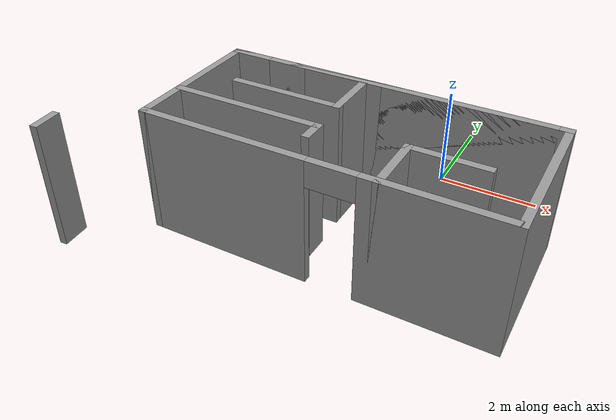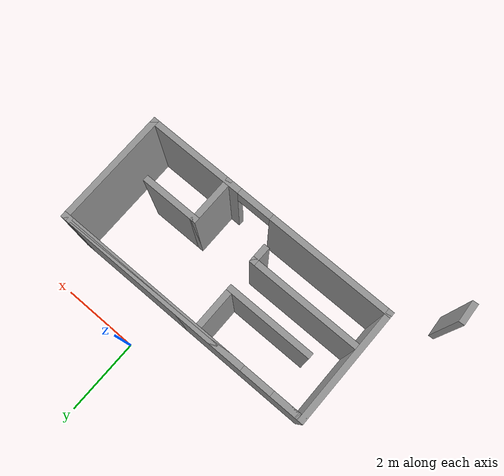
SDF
<?xml version='1.0'?>
<sdf version='1.7'>
  <model name='room'>
    <pose>-1.4927 -2.7202 0 0 -0 0</pose>
    <link name='Wall_11'>
      <collision name='Wall_11_Collision'>
        <geometry>
          <box>
            <size>0.551123 0.15 2.5</size>
          </box>
        </geometry>
        <pose>0 0 1.25 0 -0 0</pose>
      </collision>
      <visual name='Wall_11_Visual'>
        <pose>0 0 1.25 0 -0 0</pose>
        <geometry>
          <box>
            <size>0.551123 0.15 2.5</size>
          </box>
        </geometry>
        <material>
          <script>
            <uri>file://media/materials/scripts/gazebo.material</uri>
            <name>Gazebo/Grey</name>
          </script>
          <ambient>1 1 1 1</ambient>
        </material>
        <meta>
          <layer>0</layer>
        </meta>
      </visual>
      <pose>-3.9123 -2.4398 0 0 -0 1.64566</pose>
    </link>
    <link name='Wall_15'>
      <collision name='Wall_15_Collision'>
        <geometry>
          <box>
            <size>5.25 0.15 2.5</size>
          </box>
        </geometry>
        <pose>0 0 1.25 0 -0 0</pose>
      </collision>
      <visual name='Wall_15_Visual'>
        <pose>0 0 1.25 0 -0 0</pose>
        <geometry>
          <box>
            <size>5.25 0.15 2.5</size>
          </box>
        </geometry>
        <material>
          <script>
            <uri>file://media/materials/scripts/gazebo.material</uri>
            <name>Gazebo/Grey</name>
          </script>
          <ambient>1 1 1 1</ambient>
        </material>
        <meta>
          <layer>0</layer>
        </meta>
      </visual>
      <pose>1.1327 1.4902 0 0 -0 0</pose>
    </link>
    <link name='Wall_16'>
      <collision name='Wall_16_Collision'>
        <geometry>
          <box>
            <size>6.5 0.15 2.5</size>
          </box>
        </geometry>
        <pose>0 0 1.25 0 -0 0</pose>
      </collision>
      <visual name='Wall_16_Visual'>
        <pose>0 0 1.25 0 -0 0</pose>
        <geometry>
          <box>
            <size>6.5 0.15 2.5</size>
          </box>
        </geometry>
        <material>
          <script>
            <uri>file://media/materials/scripts/gazebo.material</uri>
            <name>Gazebo/Grey</name>
          </script>
          <ambient>1 1 1 1</ambient>
        </material>
        <meta>
          <layer>0</layer>
        </meta>
      </visual>
      <pose>0.5077 1.4902 0 0 -0 3.14159</pose>
    </link>
    <link name='Wall_17'>
      <collision name='Wall_17_Collision'>
        <geometry>
          <box>
            <size>3 0.15 2.5</size>
          </box>
        </geometry>
        <pose>0 0 1.25 0 -0 0</pose>
      </collision>
      <visual name='Wall_17_Visual'>
        <pose>0 0 1.25 0 -0 0</pose>
        <geometry>
          <box>
            <size>3 0.15 2.5</size>
          </box>
        </geometry>
        <material>
          <script>
            <uri>file://media/materials/scripts/gazebo.material</uri>
            <name>Gazebo/Grey</name>
          </script>
          <ambient>1 1 1 1</ambient>
        </material>
        <meta>
          <layer>0</layer>
        </meta>
      </visual>
      <pose>-2.6673 0.0652 0 0 -0 -1.5708</pose>
    </link>
    <link name='Wall_18'>
      <pose>0.6327 -1.3598 0 0 -0 0</pose>
      <visual name='Wall_18_Visual_0'>
        <pose>-1.7275 0 1.25 0 -0 0</pose>
        <geometry>
          <box>
            <size>3.295 0.15 2.5</size>
          </box>
        </geometry>
        <material>
          <script>
            <uri>file://media/materials/scripts/gazebo.material</uri>
            <name>Gazebo/Grey</name>
          </script>
          <ambient>1 1 1 1</ambient>
        </material>
        <meta>
          <layer>0</layer>
        </meta>
      </visual>
      <collision name='Wall_18_Collision_0'>
        <geometry>
          <box>
            <size>3.295 0.15 2.5</size>
          </box>
        </geometry>
        <pose>-1.7275 0 1.25 0 -0 0</pose>
      </collision>
      <visual name='Wall_18_Visual_1'>
        <pose>2.0975 0 1.25 0 -0 0</pose>
        <geometry>
          <box>
            <size>2.555 0.15 2.5</size>
          </box>
        </geometry>
        <material>
          <script>
            <uri>file://media/materials/scripts/gazebo.material</uri>
            <name>Gazebo/Grey</name>
          </script>
          <ambient>1 1 1 1</ambient>
        </material>
        <meta>
          <layer>0</layer>
        </meta>
      </visual>
      <collision name='Wall_18_Collision_1'>
        <geometry>
          <box>
            <size>2.555 0.15 2.5</size>
          </box>
        </geometry>
        <pose>2.0975 0 1.25 0 -0 0</pose>
      </collision>
      <visual name='Wall_18_Visual_2'>
        <pose>0.37 0 2.25 0 -0 0</pose>
        <geometry>
          <box>
            <size>0.9 0.15 0.5</size>
          </box>
        </geometry>
        <material>
          <script>
            <uri>file://media/materials/scripts/gazebo.material</uri>
            <name>Gazebo/Grey</name>
          </script>
          <ambient>1 1 1 1</ambient>
        </material>
        <meta>
          <layer>0</layer>
        </meta>
      </visual>
      <collision name='Wall_18_Collision_2'>
        <geometry>
          <box>
            <size>0.9 0.15 0.5</size>
          </box>
        </geometry>
        <pose>0.37 0 2.25 0 -0 0</pose>
      </collision>
    </link>
    <link name='Wall_19'>
      <collision name='Wall_19_Collision'>
        <geometry>
          <box>
            <size>3 0.15 2.5</size>
          </box>
        </geometry>
        <pose>0 0 1.25 0 -0 0</pose>
      </collision>
      <visual name='Wall_19_Visual'>
        <pose>0 0 1.25 0 -0 0</pose>
        <geometry>
          <box>
            <size>3 0.15 2.5</size>
          </box>
        </geometry>
        <material>
          <script>
            <uri>file://media/materials/scripts/gazebo.material</uri>
            <name>Gazebo/Grey</name>
          </script>
          <ambient>1 1 1 1</ambient>
        </material>
        <meta>
          <layer>0</layer>
        </meta>
      </visual>
      <pose>3.9327 0.0652 0 0 -0 1.5708</pose>
    </link>
    <link name='Wall_20'>
      <collision name='Wall_20_Collision'>
        <geometry>
          <box>
            <size>6.75 0.15 2.5</size>
          </box>
        </geometry>
        <pose>0 0 1.25 0 -0 0</pose>
      </collision>
      <visual name='Wall_20_Visual'>
        <pose>0 0 1.25 0 -0 0</pose>
        <geometry>
          <box>
            <size>6.75 0.15 2.5</size>
          </box>
        </geometry>
        <material>
          <script>
            <uri>file://media/materials/scripts/gazebo.material</uri>
            <name>Gazebo/Grey</name>
          </script>
          <ambient>1 1 1 1</ambient>
        </material>
        <meta>
          <layer>0</layer>
        </meta>
      </visual>
      <pose>0.6327 1.4902 0 0 -0 3.14159</pose>
    </link>
    <link name='Wall_21'>
      <pose>-1.2423 1.4902 0 0 -0 0</pose>
      <visual name='Wall_21_Visual_0'>
        <pose>-1.0625 0 1.25 0 -0 0</pose>
        <geometry>
          <box>
            <size>0.875 0.15 2.5</size>
          </box>
        </geometry>
        <material>
          <script>
            <uri>file://media/materials/scripts/gazebo.material</uri>
            <name>Gazebo/Grey</name>
          </script>
          <ambient>1 1 1 1</ambient>
        </material>
        <meta>
          <layer>0</layer>
        </meta>
      </visual>
      <collision name='Wall_21_Collision_0'>
        <geometry>
          <box>
            <size>0.875 0.15 2.5</size>
          </box>
        </geometry>
        <pose>-1.0625 0 1.25 0 -0 0</pose>
      </collision>
      <visual name='Wall_21_Visual_1'>
        <pose>0.4375 0 0.25 0 -0 0</pose>
        <geometry>
          <box>
            <size>2.125 0.15 0.5</size>
          </box>
        </geometry>
        <material>
          <script>
            <uri>file://media/materials/scripts/gazebo.material</uri>
            <name>Gazebo/Grey</name>
          </script>
          <ambient>1 1 1 1</ambient>
        </material>
        <meta>
          <layer>0</layer>
        </meta>
      </visual>
      <collision name='Wall_21_Collision_1'>
        <geometry>
          <box>
            <size>2.125 0.15 0.5</size>
          </box>
        </geometry>
        <pose>0.4375 0 0.25 0 -0 0</pose>
      </collision>
      <visual name='Wall_21_Visual_2'>
        <pose>0.8375 0 1.5 0 -0 0</pose>
        <geometry>
          <box>
            <size>1.325 0.15 2</size>
          </box>
        </geometry>
        <material>
          <script>
            <uri>file://media/materials/scripts/gazebo.material</uri>
            <name>Gazebo/Grey</name>
          </script>
          <ambient>1 1 1 1</ambient>
        </material>
        <meta>
          <layer>0</layer>
        </meta>
      </visual>
      <collision name='Wall_21_Collision_2'>
        <geometry>
          <box>
            <size>1.325 0.15 2</size>
          </box>
        </geometry>
        <pose>0.8375 0 1.5 0 -0 0</pose>
      </collision>
      <visual name='Wall_21_Visual_3'>
        <pose>-0.225 0 1.9 0 -0 0</pose>
        <geometry>
          <box>
            <size>0.8 0.15 1.2</size>
          </box>
        </geometry>
        <material>
          <script>
            <uri>file://media/materials/scripts/gazebo.material</uri>
            <name>Gazebo/Grey</name>
          </script>
          <ambient>1 1 1 1</ambient>
        </material>
        <meta>
          <layer>0</layer>
        </meta>
      </visual>
      <collision name='Wall_21_Collision_3'>
        <geometry>
          <box>
            <size>0.8 0.15 1.2</size>
          </box>
        </geometry>
        <pose>-0.225 0 1.9 0 -0 0</pose>
      </collision>
    </link>
    <link name='Wall_22'>
      <collision name='Wall_22_Collision'>
        <geometry>
          <box>
            <size>1.25 0.15 2.5</size>
          </box>
        </geometry>
        <pose>0 0 1.25 0 -0 0</pose>
      </collision>
      <visual name='Wall_22_Visual'>
        <pose>0 0 1.25 0 -0 0</pose>
        <geometry>
          <box>
            <size>1.25 0.15 2.5</size>
          </box>
        </geometry>
        <material>
          <script>
            <uri>file://media/materials/scripts/gazebo.material</uri>
            <name>Gazebo/Grey</name>
          </script>
          <ambient>1 1 1 1</ambient>
        </material>
        <meta>
          <layer>0</layer>
        </meta>
      </visual>
      <pose>0.1827 0.9402 0 0 -0 -1.5708</pose>
    </link>
    <link name='Wall_23'>
      <collision name='Wall_23_Collision'>
        <geometry>
          <box>
            <size>2.25 0.15 2.5</size>
          </box>
        </geometry>
        <pose>0 0 1.25 0 -0 0</pose>
      </collision>
      <visual name='Wall_23_Visual'>
        <pose>0 0 1.25 0 -0 0</pose>
        <geometry>
          <box>
            <size>2.25 0.15 2.5</size>
          </box>
        </geometry>
        <material>
          <script>
            <uri>file://media/materials/scripts/gazebo.material</uri>
            <name>Gazebo/Grey</name>
          </script>
          <ambient>1 1 1 1</ambient>
        </material>
        <meta>
          <layer>0</layer>
        </meta>
      </visual>
      <pose>-0.8673 0.3902 0 0 -0 3.14159</pose>
    </link>
    <link name='Wall_25'>
      <collision name='Wall_25_Collision'>
        <geometry>
          <box>
            <size>3 0.15 2.5</size>
          </box>
        </geometry>
        <pose>0 0 1.25 0 -0 0</pose>
      </collision>
      <visual name='Wall_25_Visual'>
        <pose>0 0 1.25 0 -0 0</pose>
        <geometry>
          <box>
            <size>3 0.15 2.5</size>
          </box>
        </geometry>
        <material>
          <script>
            <uri>file://media/materials/scripts/gazebo.material</uri>
            <name>Gazebo/Grey</name>
          </script>
          <ambient>1 1 1 1</ambient>
        </material>
        <meta>
          <layer>0</layer>
        </meta>
      </visual>
      <pose>-1.2123 -0.3798 0 0 -0 0</pose>
    </link>
    <link name='Wall_26'>
      <collision name='Wall_26_Collision'>
        <geometry>
          <box>
            <size>0.5 0.15 2.5</size>
          </box>
        </geometry>
        <pose>0 0 1.25 0 -0 0</pose>
      </collision>
      <visual name='Wall_26_Visual'>
        <pose>0 0 1.25 0 -0 0</pose>
        <geometry>
          <box>
            <size>0.5 0.15 2.5</size>
          </box>
        </geometry>
        <material>
          <script>
            <uri>file://media/materials/scripts/gazebo.material</uri>
            <name>Gazebo/Grey</name>
          </script>
          <ambient>1 1 1 1</ambient>
        </material>
        <meta>
          <layer>0</layer>
        </meta>
      </visual>
      <pose>0.2127 -0.554801 0 0 -0 -1.5708</pose>
    </link>
    <link name='Wall_28'>
      <collision name='Wall_28_Collision'>
        <geometry>
          <box>
            <size>1.25 0.15 2.5</size>
          </box>
        </geometry>
        <pose>0 0 1.25 0 -0 0</pose>
      </collision>
      <visual name='Wall_28_Visual'>
        <pose>0 0 1.25 0 -0 0</pose>
        <geometry>
          <box>
            <size>1.25 0.15 2.5</size>
          </box>
        </geometry>
        <material>
          <script>
            <uri>file://media/materials/scripts/gazebo.material</uri>
            <name>Gazebo/Grey</name>
          </script>
          <ambient>1 1 1 1</ambient>
        </material>
        <meta>
          <layer>0</layer>
        </meta>
      </visual>
      <pose>1.7827 -0.8098 0 0 -0 1.5708</pose>
    </link>
    <link name='Wall_29'>
      <collision name='Wall_29_Collision'>
        <geometry>
          <box>
            <size>1.5 0.15 2.5</size>
          </box>
        </geometry>
        <pose>0 0 1.25 0 -0 0</pose>
      </collision>
      <visual name='Wall_29_Visual'>
        <pose>0 0 1.25 0 -0 0</pose>
        <geometry>
          <box>
            <size>1.5 0.15 2.5</size>
          </box>
        </geometry>
        <material>
          <script>
            <uri>file://media/materials/scripts/gazebo.material</uri>
            <name>Gazebo/Grey</name>
          </script>
          <ambient>1 1 1 1</ambient>
        </material>
        <meta>
          <layer>0</layer>
        </meta>
      </visual>
      <pose>2.4577 -0.2598 0 0 -0 0</pose>
    </link>
    <static>1</static>
  </model>
</sdf>
